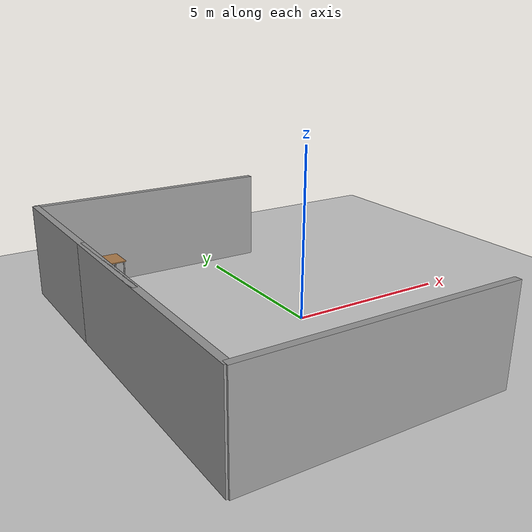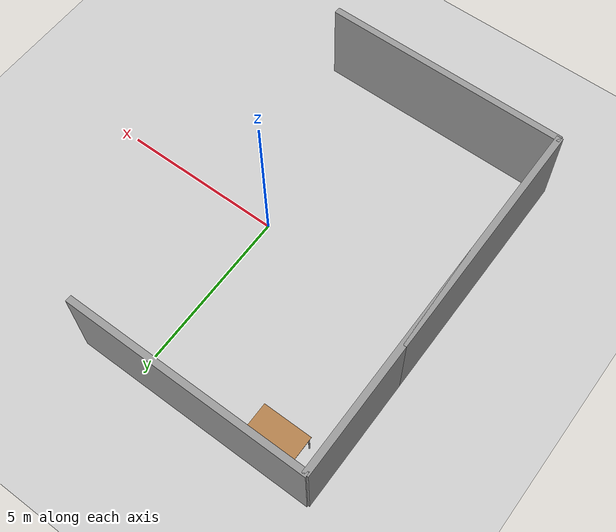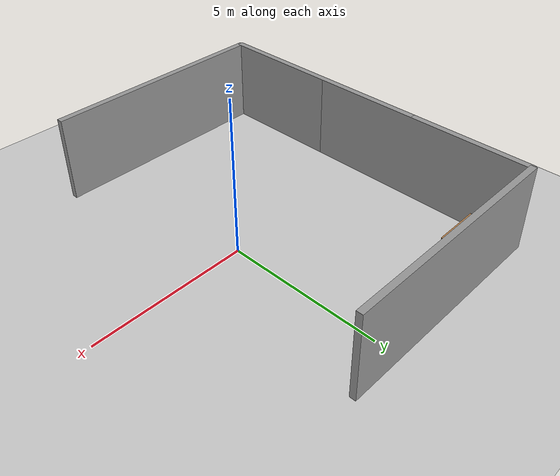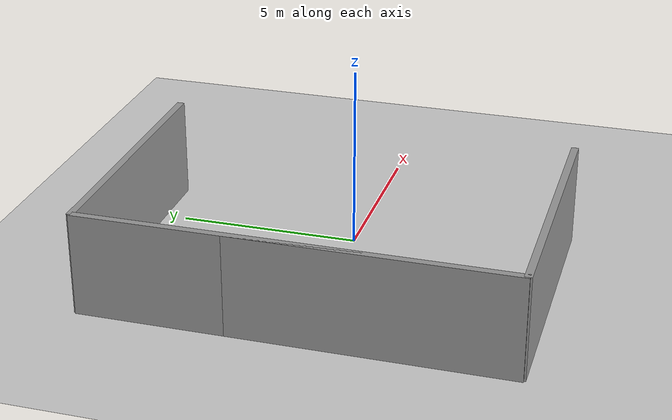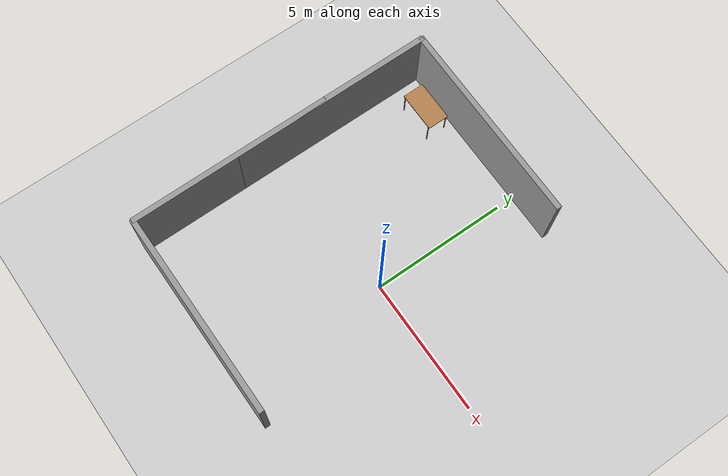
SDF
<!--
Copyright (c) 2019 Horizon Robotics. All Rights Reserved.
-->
<sdf version="1.5">
 <world name="default">
  <physics type="ode">
   <max_step_size>0.001</max_step_size>
   <real_time_factor>1</real_time_factor>
   <real_time_update_rate>0</real_time_update_rate>
   <max_contacts>20</max_contacts>
   <ode>
    <solver><type>quick</type><iters>50</iters><sor>1.3</sor></solver>
    <constraints>
     <contact_max_correcting_vel>1</contact_max_correcting_vel>
     <contact_surface_layer>0.002</contact_surface_layer>
     <cfm>0.0001</cfm>
     <erp>0.3</erp>
    </constraints>
   </ode>
  </physics>
  <include><uri>model://texture_ground_plane</uri></include>
  <include><uri>model://sun</uri></include>
  <model name="placing_table">
   <static>1</static>
   <include><uri>model://table</uri></include>
   <pose>-4.20 4.92 0 0 -0 0</pose>
  </model>
  <model name="grey_wall_left">
   <static>1</static>
   <include><uri>model://grey_wall</uri></include>
   <pose>-2 5.7 0 0 -0 0</pose>
  </model>
  <model name="grey_wall_right">
   <static>1</static>
   <include><uri>model://grey_wall</uri></include>
   <pose>-2 -5.7 0 0 -0 0</pose>
  </model>
  <model name="grey_wall_behind0">
   <static>1</static>
   <include><uri>model://grey_wall</uri></include>
   <pose>-5.7 2 0 0 -0 1.5708</pose>
  </model>
  <model name="grey_wall_behind1">
   <static>1</static>
   <include><uri>model://grey_wall</uri></include>
   <pose>-5.7 -2 0 0 -0 1.5708</pose>
  </model>
 </world>
</sdf>

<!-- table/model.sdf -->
<sdf version="1.5">
  <model name="table">
    <static>true</static>
    <link name="link">
      <collision name="surface">
        <pose>0 0 1.0 0 0 0</pose>
        <geometry>
          <box>
            <size>1.5 0.8 0.03</size>
          </box>
        </geometry>
        <surface>
          <friction>
            <ode>
              <mu>0.6</mu>
              <mu2>0.6</mu2>
            </ode>
          </friction>
        </surface>
      </collision>
      <visual name="visual1">
        <pose>0 0 1.0 0 0 0</pose>
        <geometry>
          <box>
            <size>1.5 0.8 0.03</size>
          </box>
        </geometry>
        <material>
          <script>
            <uri>model://media/materials/scripts/gazebo.material</uri>
            <name>Gazebo/Wood</name>
          </script>
        </material>
      </visual>
      <collision name="front_left_leg">
        <pose>0.68 0.38 0.5 0 0 0</pose>
        <geometry>
          <cylinder>
            <radius>0.02</radius>
            <length>1.0</length>
          </cylinder>
        </geometry>
      </collision>
      <visual name="front_left_leg">
        <pose>0.68 0.38 0.5 0 0 0</pose>
        <geometry>
          <cylinder>
            <radius>0.02</radius>
            <length>1.0</length>
          </cylinder>
        </geometry>
        <material>
          <script>
            <uri>model://media/materials/scripts/gazebo.material</uri>
            <name>Gazebo/Grey</name>
          </script>
        </material>
      </visual>
      <collision name="front_right_leg">
        <pose>0.68 -0.38 0.5 0 0 0</pose>
        <geometry>
          <cylinder>
            <radius>0.02</radius>
            <length>1.0</length>
          </cylinder>
        </geometry>
      </collision>
      <visual name="front_right_leg">
        <pose>0.68 -0.38 0.5 0 0 0</pose>
        <geometry>
          <cylinder>
            <radius>0.02</radius>
            <length>1.0</length>
          </cylinder>
        </geometry>
        <material>
          <script>
            <uri>model://media/materials/scripts/gazebo.material</uri>
            <name>Gazebo/Grey</name>
          </script>
        </material>
      </visual>
      <collision name="back_right_leg">
        <pose>-0.68 -0.38 0.5 0 0 0</pose>
        <geometry>
          <cylinder>
            <radius>0.02</radius>
            <length>1.0</length>
          </cylinder>
        </geometry>
      </collision>
      <visual name="back_right_leg">
        <pose>-0.68 -0.38 0.5 0 0 0</pose>
        <geometry>
          <cylinder>
            <radius>0.02</radius>
            <length>1.0</length>
          </cylinder>
        </geometry>
        <material>
          <script>
            <uri>model://media/materials/scripts/gazebo.material</uri>
            <name>Gazebo/Grey</name>
          </script>
        </material>
      </visual>
      <collision name="back_left_leg">
        <pose>-0.68 0.38 0.5 0 0 0</pose>
        <geometry>
          <cylinder>
            <radius>0.02</radius>
            <length>1.0</length>
          </cylinder>
        </geometry>
      </collision>
      <visual name="back_left_leg">
        <pose>-0.68 0.38 0.5 0 0 0</pose>
        <geometry>
          <cylinder>
            <radius>0.02</radius>
            <length>1.0</length>
          </cylinder>
        </geometry>
        <material>
          <script>
            <uri>model://media/materials/scripts/gazebo.material</uri>
            <name>Gazebo/Grey</name>
          </script>
        </material>
      </visual>
    </link>
  </model>
</sdf>

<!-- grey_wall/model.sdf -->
<sdf version="1.5">
  <model name="grey_wall">
    <static>true</static>
    <link name="link">
      <pose>0 0 1.4 0 0 0</pose>
      <collision name="collision">
        <geometry>
          <box>
            <size>7.5 0.2 2.8</size>
          </box>
        </geometry>
      </collision>
      <visual name="visual">
        <cast_shadows>false</cast_shadows>
        <geometry>
          <box>
            <size>7.5 0.2 2.8</size>
          </box>
        </geometry>
        <material>
          <script>
            <uri>model://../model_source/models/grey_wall/materials/scripts</uri>
            <uri>model://../model_source/models/grey_wall/materials/textures</uri>
            <name>vrc/grey_wall</name>
          </script>
        </material>
      </visual>
    </link>
  </model>
</sdf>

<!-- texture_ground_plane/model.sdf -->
<sdf version="1.5">
  <model name="ground_plane">
    <static>true</static>
    <link name="link">
      <collision name="collision">
        <geometry>
          <plane>
            <normal>0 0 1</normal>
            <size>20 20</size>
          </plane>
        </geometry>
        <surface>
          <friction>
            <ode>
              <mu>100</mu>
              <mu2>50</mu2>
            </ode>
          </friction>
        </surface>
      </collision>
      <visual name="visual">
        <cast_shadows>false</cast_shadows>
        <geometry>
          <plane>
            <normal>0 0 1</normal>
            <size>20 20</size>
          </plane>
        </geometry>
        <material>
          <script>
            <uri>model://texture_ground_plane/materials/scripts/texture_ground_plane.material</uri>
            <uri>model://texture_ground_plane/materials/textures/ground_texture.jpeg</uri>
            <name>TextureGroundPlane/Image</name>
          </script>
        </material>
      </visual>
    </link>
  </model>
</sdf>
